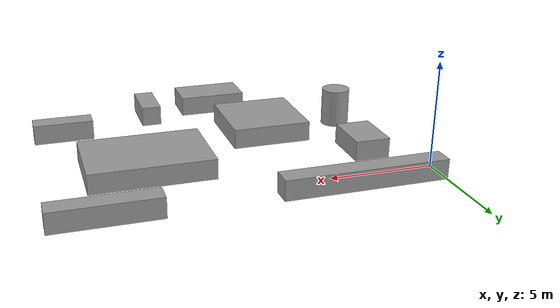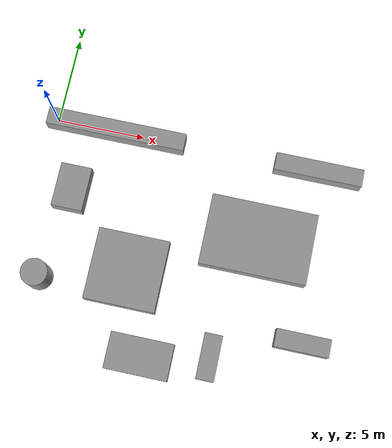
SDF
<?xml version='1.0'?>
<sdf version='1.7'>
  <model name='lab_world'>
    <link name='link'>
      <inertial>
        <mass>1</mass>
        <inertia>
          <ixx>0.166667</ixx>
          <ixy>0</ixy>
          <ixz>0</ixz>
          <iyy>0.166667</iyy>
          <iyz>0</iyz>
          <izz>0.166667</izz>
        </inertia>
        <pose>0 0 0 0 -0 0</pose>
      </inertial>
      <self_collide>0</self_collide>
      <enable_wind>0</enable_wind>
      <kinematic>0</kinematic>
      <pose>3.37169 0.101448 0 0 -0 0</pose>
      <gravity>1</gravity>
      <visual name='visual'>
        <geometry>
          <box>
            <size>8 1 1</size>
          </box>
        </geometry>
        <material>
          <script>
            <name>Gazebo/Grey</name>
            <uri>file://media/materials/scripts/gazebo.material</uri>
          </script>
          <shader type='pixel'>
            <normal_map>__default__</normal_map>
          </shader>
          <ambient>0.3 0.3 0.3 1</ambient>
          <diffuse>0.7 0.7 0.7 1</diffuse>
          <specular>0.01 0.01 0.01 1</specular>
          <emissive>0 0 0 1</emissive>
        </material>
        <pose>0 0 0 0 -0 0</pose>
        <transparency>0</transparency>
        <cast_shadows>1</cast_shadows>
      </visual>
      <collision name='collision'>
        <laser_retro>0</laser_retro>
        <max_contacts>10</max_contacts>
        <pose>0 0 0 0 -0 0</pose>
        <geometry>
          <box>
            <size>1 1 1</size>
          </box>
        </geometry>
        <surface>
          <friction>
            <ode>
              <mu>1</mu>
              <mu2>1</mu2>
              <fdir1>0 0 0</fdir1>
              <slip1>0</slip1>
              <slip2>0</slip2>
            </ode>
            <torsional>
              <coefficient>1</coefficient>
              <patch_radius>0</patch_radius>
              <surface_radius>0</surface_radius>
              <use_patch_radius>1</use_patch_radius>
              <ode>
                <slip>0</slip>
              </ode>
            </torsional>
          </friction>
          <bounce>
            <restitution_coefficient>0</restitution_coefficient>
            <threshold>1e+06</threshold>
          </bounce>
          <contact>
            <collide_without_contact>0</collide_without_contact>
            <collide_without_contact_bitmask>1</collide_without_contact_bitmask>
            <collide_bitmask>1</collide_bitmask>
            <ode>
              <soft_cfm>0</soft_cfm>
              <soft_erp>0.2</soft_erp>
              <kp>1e+13</kp>
              <kd>1</kd>
              <max_vel>0.01</max_vel>
              <min_depth>0</min_depth>
            </ode>
            <bullet>
              <split_impulse>1</split_impulse>
              <split_impulse_penetration_threshold>-0.01</split_impulse_penetration_threshold>
              <soft_cfm>0</soft_cfm>
              <soft_erp>0.2</soft_erp>
              <kp>1e+13</kp>
              <kd>1</kd>
            </bullet>
          </contact>
        </surface>
      </collision>
    </link>
    <link name='link_0'>
      <inertial>
        <mass>1</mass>
        <inertia>
          <ixx>0.166667</ixx>
          <ixy>0</ixy>
          <ixz>0</ixz>
          <iyy>0.166667</iyy>
          <iyz>0</iyz>
          <izz>0.166667</izz>
        </inertia>
        <pose>0 0 0 0 -0 0</pose>
      </inertial>
      <pose>7.48521 -12.0445 0 0 -0 0</pose>
      <gravity>1</gravity>
      <self_collide>0</self_collide>
      <kinematic>0</kinematic>
      <enable_wind>0</enable_wind>
      <visual name='visual'>
        <pose>0 0 0 0 -0 0</pose>
        <geometry>
          <box>
            <size>3.5 2 1</size>
          </box>
        </geometry>
        <material>
          <lighting>1</lighting>
          <script>
            <uri>file://media/materials/scripts/gazebo.material</uri>
            <name>Gazebo/Grey</name>
          </script>
          <shader type='pixel'>
            <normal_map>__default__</normal_map>
          </shader>
          <ambient>0.3 0.3 0.3 1</ambient>
          <diffuse>0.7 0.7 0.7 1</diffuse>
          <specular>0.01 0.01 0.01 1</specular>
          <emissive>0 0 0 1</emissive>
        </material>
        <transparency>0</transparency>
        <cast_shadows>1</cast_shadows>
      </visual>
      <collision name='collision'>
        <laser_retro>0</laser_retro>
        <max_contacts>10</max_contacts>
        <pose>0 0 0 0 -0 0</pose>
        <geometry>
          <box>
            <size>1 1 1</size>
          </box>
        </geometry>
        <surface>
          <friction>
            <ode>
              <mu>1</mu>
              <mu2>1</mu2>
              <fdir1>0 0 0</fdir1>
              <slip1>0</slip1>
              <slip2>0</slip2>
            </ode>
            <torsional>
              <coefficient>1</coefficient>
              <patch_radius>0</patch_radius>
              <surface_radius>0</surface_radius>
              <use_patch_radius>1</use_patch_radius>
              <ode>
                <slip>0</slip>
              </ode>
            </torsional>
          </friction>
          <bounce>
            <restitution_coefficient>0</restitution_coefficient>
            <threshold>1e+06</threshold>
          </bounce>
          <contact>
            <collide_without_contact>0</collide_without_contact>
            <collide_without_contact_bitmask>1</collide_without_contact_bitmask>
            <collide_bitmask>1</collide_bitmask>
            <ode>
              <soft_cfm>0</soft_cfm>
              <soft_erp>0.2</soft_erp>
              <kp>1e+13</kp>
              <kd>1</kd>
              <max_vel>0.01</max_vel>
              <min_depth>0</min_depth>
            </ode>
            <bullet>
              <split_impulse>1</split_impulse>
              <split_impulse_penetration_threshold>-0.01</split_impulse_penetration_threshold>
              <soft_cfm>0</soft_cfm>
              <soft_erp>0.2</soft_erp>
              <kp>1e+13</kp>
              <kd>1</kd>
            </bullet>
          </contact>
        </surface>
      </collision>
    </link>
    <link name='link_1'>
      <inertial>
        <mass>1</mass>
        <inertia>
          <ixx>0.166667</ixx>
          <ixy>0</ixy>
          <ixz>0</ixz>
          <iyy>0.166667</iyy>
          <iyz>0</iyz>
          <izz>0.166667</izz>
        </inertia>
        <pose>0 0 0 0 -0 0</pose>
      </inertial>
      <pose>5.78992 -7.64433 0 0 -0 0</pose>
      <gravity>1</gravity>
      <self_collide>0</self_collide>
      <kinematic>0</kinematic>
      <enable_wind>0</enable_wind>
      <visual name='visual'>
        <pose>0 0 0 0 -0 0</pose>
        <geometry>
          <box>
            <size>4 4 1</size>
          </box>
        </geometry>
        <material>
          <lighting>1</lighting>
          <script>
            <uri>file://media/materials/scripts/gazebo.material</uri>
            <name>Gazebo/Grey</name>
          </script>
          <shader type='pixel'>
            <normal_map>__default__</normal_map>
          </shader>
          <ambient>0.3 0.3 0.3 1</ambient>
          <diffuse>0.7 0.7 0.7 1</diffuse>
          <specular>0.01 0.01 0.01 1</specular>
          <emissive>0 0 0 1</emissive>
        </material>
        <transparency>0</transparency>
        <cast_shadows>1</cast_shadows>
      </visual>
      <collision name='collision'>
        <laser_retro>0</laser_retro>
        <max_contacts>10</max_contacts>
        <pose>0 0 0 0 -0 0</pose>
        <geometry>
          <box>
            <size>1 1 1</size>
          </box>
        </geometry>
        <surface>
          <friction>
            <ode>
              <mu>1</mu>
              <mu2>1</mu2>
              <fdir1>0 0 0</fdir1>
              <slip1>0</slip1>
              <slip2>0</slip2>
            </ode>
            <torsional>
              <coefficient>1</coefficient>
              <patch_radius>0</patch_radius>
              <surface_radius>0</surface_radius>
              <use_patch_radius>1</use_patch_radius>
              <ode>
                <slip>0</slip>
              </ode>
            </torsional>
          </friction>
          <bounce>
            <restitution_coefficient>0</restitution_coefficient>
            <threshold>1e+06</threshold>
          </bounce>
          <contact>
            <collide_without_contact>0</collide_without_contact>
            <collide_without_contact_bitmask>1</collide_without_contact_bitmask>
            <collide_bitmask>1</collide_bitmask>
            <ode>
              <soft_cfm>0</soft_cfm>
              <soft_erp>0.2</soft_erp>
              <kp>1e+13</kp>
              <kd>1</kd>
              <max_vel>0.01</max_vel>
              <min_depth>0</min_depth>
            </ode>
            <bullet>
              <split_impulse>1</split_impulse>
              <split_impulse_penetration_threshold>-0.01</split_impulse_penetration_threshold>
              <soft_cfm>0</soft_cfm>
              <soft_erp>0.2</soft_erp>
              <kp>1e+13</kp>
              <kd>1</kd>
            </bullet>
          </contact>
        </surface>
      </collision>
    </link>
    <link name='link_10'>
      <inertial>
        <mass>1</mass>
        <inertia>
          <ixx>0.166667</ixx>
          <ixy>0</ixy>
          <ixz>0</ixz>
          <iyy>0.166667</iyy>
          <iyz>0</iyz>
          <izz>0.166667</izz>
        </inertia>
        <pose>0 0 0 0 -0 0</pose>
      </inertial>
      <pose>11.1797 -11.3057 0.022995 0 -0 0</pose>
      <gravity>1</gravity>
      <self_collide>0</self_collide>
      <kinematic>0</kinematic>
      <enable_wind>0</enable_wind>
      <visual name='visual'>
        <pose>0 0 0 0 -0 0</pose>
        <geometry>
          <box>
            <size>1 2.5 1</size>
          </box>
        </geometry>
        <material>
          <lighting>1</lighting>
          <script>
            <uri>file://media/materials/scripts/gazebo.material</uri>
            <name>Gazebo/Grey</name>
          </script>
          <shader type='pixel'>
            <normal_map>__default__</normal_map>
          </shader>
          <ambient>0.3 0.3 0.3 1</ambient>
          <diffuse>0.7 0.7 0.7 1</diffuse>
          <specular>0.01 0.01 0.01 1</specular>
          <emissive>0 0 0 1</emissive>
        </material>
        <transparency>0</transparency>
        <cast_shadows>1</cast_shadows>
      </visual>
      <collision name='collision'>
        <laser_retro>0</laser_retro>
        <max_contacts>10</max_contacts>
        <pose>0 0 0 0 -0 0</pose>
        <geometry>
          <box>
            <size>1 1 1</size>
          </box>
        </geometry>
        <surface>
          <friction>
            <ode>
              <mu>1</mu>
              <mu2>1</mu2>
              <fdir1>0 0 0</fdir1>
              <slip1>0</slip1>
              <slip2>0</slip2>
            </ode>
            <torsional>
              <coefficient>1</coefficient>
              <patch_radius>0</patch_radius>
              <surface_radius>0</surface_radius>
              <use_patch_radius>1</use_patch_radius>
              <ode>
                <slip>0</slip>
              </ode>
            </torsional>
          </friction>
          <bounce>
            <restitution_coefficient>0</restitution_coefficient>
            <threshold>1e+06</threshold>
          </bounce>
          <contact>
            <collide_without_contact>0</collide_without_contact>
            <collide_without_contact_bitmask>1</collide_without_contact_bitmask>
            <collide_bitmask>1</collide_bitmask>
            <ode>
              <soft_cfm>0</soft_cfm>
              <soft_erp>0.2</soft_erp>
              <kp>1e+13</kp>
              <kd>1</kd>
              <max_vel>0.01</max_vel>
              <min_depth>0</min_depth>
            </ode>
            <bullet>
              <split_impulse>1</split_impulse>
              <split_impulse_penetration_threshold>-0.01</split_impulse_penetration_threshold>
              <soft_cfm>0</soft_cfm>
              <soft_erp>0.2</soft_erp>
              <kp>1e+13</kp>
              <kd>1</kd>
            </bullet>
          </contact>
        </surface>
      </collision>
    </link>
    <link name='link_3'>
      <inertial>
        <mass>1.17268</mass>
        <inertia>
          <ixx>0.195446</ixx>
          <ixy>0</ixy>
          <ixz>0</ixz>
          <iyy>0.232109</iyy>
          <iyz>0</iyz>
          <izz>0.232109</izz>
        </inertia>
        <pose>0 0 0 0 -0 0</pose>
      </inertial>
      <pose>1.71359 -3.73052 0 0 -0 0</pose>
      <gravity>1</gravity>
      <self_collide>0</self_collide>
      <kinematic>0</kinematic>
      <enable_wind>0</enable_wind>
      <visual name='visual'>
        <pose>0 0 0 0 -0 0</pose>
        <geometry>
          <box>
            <size>1.75902 2.5 1</size>
          </box>
        </geometry>
        <material>
          <lighting>1</lighting>
          <script>
            <uri>file://media/materials/scripts/gazebo.material</uri>
            <name>Gazebo/Grey</name>
          </script>
          <shader type='pixel'>
            <normal_map>__default__</normal_map>
          </shader>
          <ambient>0.3 0.3 0.3 1</ambient>
          <diffuse>0.7 0.7 0.7 1</diffuse>
          <specular>0.01 0.01 0.01 1</specular>
          <emissive>0 0 0 1</emissive>
        </material>
        <transparency>0</transparency>
        <cast_shadows>1</cast_shadows>
      </visual>
      <collision name='collision'>
        <laser_retro>0</laser_retro>
        <max_contacts>10</max_contacts>
        <pose>0 0 0 0 -0 0</pose>
        <geometry>
          <box>
            <size>1.17268 1 1</size>
          </box>
        </geometry>
        <surface>
          <friction>
            <ode>
              <mu>1</mu>
              <mu2>1</mu2>
              <fdir1>0 0 0</fdir1>
              <slip1>0</slip1>
              <slip2>0</slip2>
            </ode>
            <torsional>
              <coefficient>1</coefficient>
              <patch_radius>0</patch_radius>
              <surface_radius>0</surface_radius>
              <use_patch_radius>1</use_patch_radius>
              <ode>
                <slip>0</slip>
              </ode>
            </torsional>
          </friction>
          <bounce>
            <restitution_coefficient>0</restitution_coefficient>
            <threshold>1e+06</threshold>
          </bounce>
          <contact>
            <collide_without_contact>0</collide_without_contact>
            <collide_without_contact_bitmask>1</collide_without_contact_bitmask>
            <collide_bitmask>1</collide_bitmask>
            <ode>
              <soft_cfm>0</soft_cfm>
              <soft_erp>0.2</soft_erp>
              <kp>1e+13</kp>
              <kd>1</kd>
              <max_vel>0.01</max_vel>
              <min_depth>0</min_depth>
            </ode>
            <bullet>
              <split_impulse>1</split_impulse>
              <split_impulse_penetration_threshold>-0.01</split_impulse_penetration_threshold>
              <soft_cfm>0</soft_cfm>
              <soft_erp>0.2</soft_erp>
              <kp>1e+13</kp>
              <kd>1</kd>
            </bullet>
          </contact>
        </surface>
      </collision>
    </link>
    <link name='link_4'>
      <inertial>
        <mass>1</mass>
        <inertia>
          <ixx>0.166667</ixx>
          <ixy>0</ixy>
          <ixz>0</ixz>
          <iyy>0.166667</iyy>
          <iyz>0</iyz>
          <izz>0.166667</izz>
        </inertia>
        <pose>0 0 0 0 -0 0</pose>
      </inertial>
      <pose>12.536 -4.46478 0 0 -0 0</pose>
      <gravity>1</gravity>
      <self_collide>0</self_collide>
      <kinematic>0</kinematic>
      <enable_wind>0</enable_wind>
      <visual name='visual'>
        <pose>0 0 0 0 -0 0</pose>
        <geometry>
          <box>
            <size>6 4 1</size>
          </box>
        </geometry>
        <material>
          <lighting>1</lighting>
          <script>
            <uri>file://media/materials/scripts/gazebo.material</uri>
            <name>Gazebo/Grey</name>
          </script>
          <shader type='pixel'>
            <normal_map>__default__</normal_map>
          </shader>
          <ambient>0.3 0.3 0.3 1</ambient>
          <diffuse>0.7 0.7 0.7 1</diffuse>
          <specular>0.01 0.01 0.01 1</specular>
          <emissive>0 0 0 1</emissive>
        </material>
        <transparency>0</transparency>
        <cast_shadows>1</cast_shadows>
      </visual>
      <collision name='collision'>
        <laser_retro>0</laser_retro>
        <max_contacts>10</max_contacts>
        <pose>0 0 0 0 -0 0</pose>
        <geometry>
          <box>
            <size>1 1 1</size>
          </box>
        </geometry>
        <surface>
          <friction>
            <ode>
              <mu>1</mu>
              <mu2>1</mu2>
              <fdir1>0 0 0</fdir1>
              <slip1>0</slip1>
              <slip2>0</slip2>
            </ode>
            <torsional>
              <coefficient>1</coefficient>
              <patch_radius>0</patch_radius>
              <surface_radius>0</surface_radius>
              <use_patch_radius>1</use_patch_radius>
              <ode>
                <slip>0</slip>
              </ode>
            </torsional>
          </friction>
          <bounce>
            <restitution_coefficient>0</restitution_coefficient>
            <threshold>1e+06</threshold>
          </bounce>
          <contact>
            <collide_without_contact>0</collide_without_contact>
            <collide_without_contact_bitmask>1</collide_without_contact_bitmask>
            <collide_bitmask>1</collide_bitmask>
            <ode>
              <soft_cfm>0</soft_cfm>
              <soft_erp>0.2</soft_erp>
              <kp>1e+13</kp>
              <kd>1</kd>
              <max_vel>0.01</max_vel>
              <min_depth>0</min_depth>
            </ode>
            <bullet>
              <split_impulse>1</split_impulse>
              <split_impulse_penetration_threshold>-0.01</split_impulse_penetration_threshold>
              <soft_cfm>0</soft_cfm>
              <soft_erp>0.2</soft_erp>
              <kp>1e+13</kp>
              <kd>1</kd>
            </bullet>
          </contact>
        </surface>
      </collision>
    </link>
    <link name='link_7'>
      <inertial>
        <mass>1</mass>
        <inertia>
          <ixx>0.166667</ixx>
          <ixy>0</ixy>
          <ixz>0</ixz>
          <iyy>0.166667</iyy>
          <iyz>0</iyz>
          <izz>0.166667</izz>
        </inertia>
        <pose>0 0 0 0 -0 0</pose>
      </inertial>
      <pose>15.0931 0.132884 0 0 -0 0</pose>
      <gravity>1</gravity>
      <self_collide>0</self_collide>
      <kinematic>0</kinematic>
      <enable_wind>0</enable_wind>
      <visual name='visual'>
        <pose>0 0 0 0 -0 0</pose>
        <geometry>
          <box>
            <size>5 1 1</size>
          </box>
        </geometry>
        <material>
          <lighting>1</lighting>
          <script>
            <uri>file://media/materials/scripts/gazebo.material</uri>
            <name>Gazebo/Grey</name>
          </script>
          <shader type='pixel'>
            <normal_map>__default__</normal_map>
          </shader>
          <ambient>0.3 0.3 0.3 1</ambient>
          <diffuse>0.7 0.7 0.7 1</diffuse>
          <specular>0.01 0.01 0.01 1</specular>
          <emissive>0 0 0 1</emissive>
        </material>
        <transparency>0</transparency>
        <cast_shadows>1</cast_shadows>
      </visual>
      <collision name='collision'>
        <laser_retro>0</laser_retro>
        <max_contacts>10</max_contacts>
        <pose>0 0 0 0 -0 0</pose>
        <geometry>
          <box>
            <size>1 1 1</size>
          </box>
        </geometry>
        <surface>
          <friction>
            <ode>
              <mu>1</mu>
              <mu2>1</mu2>
              <fdir1>0 0 0</fdir1>
              <slip1>0</slip1>
              <slip2>0</slip2>
            </ode>
            <torsional>
              <coefficient>1</coefficient>
              <patch_radius>0</patch_radius>
              <surface_radius>0</surface_radius>
              <use_patch_radius>1</use_patch_radius>
              <ode>
                <slip>0</slip>
              </ode>
            </torsional>
          </friction>
          <bounce>
            <restitution_coefficient>0</restitution_coefficient>
            <threshold>1e+06</threshold>
          </bounce>
          <contact>
            <collide_without_contact>0</collide_without_contact>
            <collide_without_contact_bitmask>1</collide_without_contact_bitmask>
            <collide_bitmask>1</collide_bitmask>
            <ode>
              <soft_cfm>0</soft_cfm>
              <soft_erp>0.2</soft_erp>
              <kp>1e+13</kp>
              <kd>1</kd>
              <max_vel>0.01</max_vel>
              <min_depth>0</min_depth>
            </ode>
            <bullet>
              <split_impulse>1</split_impulse>
              <split_impulse_penetration_threshold>-0.01</split_impulse_penetration_threshold>
              <soft_cfm>0</soft_cfm>
              <soft_erp>0.2</soft_erp>
              <kp>1e+13</kp>
              <kd>1</kd>
            </bullet>
          </contact>
        </surface>
      </collision>
    </link>
    <link name='link_8'>
      <inertial>
        <mass>1</mass>
        <inertia>
          <ixx>0.145833</ixx>
          <ixy>0</ixy>
          <ixz>0</ixz>
          <iyy>0.145833</iyy>
          <iyz>0</iyz>
          <izz>0.125</izz>
        </inertia>
        <pose>0 0 0 0 -0 0</pose>
      </inertial>
      <pose>0.966522 -8.87218 0 0 -0 0</pose>
      <gravity>1</gravity>
      <self_collide>0</self_collide>
      <kinematic>0</kinematic>
      <enable_wind>0</enable_wind>
      <visual name='visual'>
        <pose>0 0 0 0 -0 0</pose>
        <geometry>
          <cylinder>
            <radius>0.75</radius>
            <length>2</length>
          </cylinder>
        </geometry>
        <material>
          <lighting>1</lighting>
          <script>
            <uri>file://media/materials/scripts/gazebo.material</uri>
            <name>Gazebo/Grey</name>
          </script>
          <shader type='pixel'>
            <normal_map>__default__</normal_map>
          </shader>
          <ambient>0.3 0.3 0.3 1</ambient>
          <diffuse>0.7 0.7 0.7 1</diffuse>
          <specular>0.01 0.01 0.01 1</specular>
          <emissive>0 0 0 1</emissive>
        </material>
        <transparency>0</transparency>
        <cast_shadows>1</cast_shadows>
      </visual>
      <collision name='collision'>
        <laser_retro>0</laser_retro>
        <max_contacts>10</max_contacts>
        <pose>0 0 0 0 -0 0</pose>
        <geometry>
          <cylinder>
            <radius>0.5</radius>
            <length>1</length>
          </cylinder>
        </geometry>
        <surface>
          <friction>
            <ode>
              <mu>1</mu>
              <mu2>1</mu2>
              <fdir1>0 0 0</fdir1>
              <slip1>0</slip1>
              <slip2>0</slip2>
            </ode>
            <torsional>
              <coefficient>1</coefficient>
              <patch_radius>0</patch_radius>
              <surface_radius>0</surface_radius>
              <use_patch_radius>1</use_patch_radius>
              <ode>
                <slip>0</slip>
              </ode>
            </torsional>
          </friction>
          <bounce>
            <restitution_coefficient>0</restitution_coefficient>
            <threshold>1e+06</threshold>
          </bounce>
          <contact>
            <collide_without_contact>0</collide_without_contact>
            <collide_without_contact_bitmask>1</collide_without_contact_bitmask>
            <collide_bitmask>1</collide_bitmask>
            <ode>
              <soft_cfm>0</soft_cfm>
              <soft_erp>0.2</soft_erp>
              <kp>1e+13</kp>
              <kd>1</kd>
              <max_vel>0.01</max_vel>
              <min_depth>0</min_depth>
            </ode>
            <bullet>
              <split_impulse>1</split_impulse>
              <split_impulse_penetration_threshold>-0.01</split_impulse_penetration_threshold>
              <soft_cfm>0</soft_cfm>
              <soft_erp>0.2</soft_erp>
              <kp>1e+13</kp>
              <kd>1</kd>
            </bullet>
          </contact>
        </surface>
      </collision>
    </link>
    <link name='link_9'>
      <inertial>
        <mass>1</mass>
        <inertia>
          <ixx>0.166667</ixx>
          <ixy>0</ixy>
          <ixz>0</ixz>
          <iyy>0.166667</iyy>
          <iyz>0</iyz>
          <izz>0.166667</izz>
        </inertia>
        <pose>0 0 0 0 -0 0</pose>
      </inertial>
      <pose>15.928 -9.52893 0 0 -0 0</pose>
      <gravity>1</gravity>
      <self_collide>0</self_collide>
      <kinematic>0</kinematic>
      <enable_wind>0</enable_wind>
      <visual name='visual'>
        <pose>0 0 0 0 -0 0</pose>
        <geometry>
          <box>
            <size>3 1 1</size>
          </box>
        </geometry>
        <material>
          <lighting>1</lighting>
          <script>
            <uri>file://media/materials/scripts/gazebo.material</uri>
            <name>Gazebo/Grey</name>
          </script>
          <shader type='pixel'>
            <normal_map>__default__</normal_map>
          </shader>
          <ambient>0.3 0.3 0.3 1</ambient>
          <diffuse>0.7 0.7 0.7 1</diffuse>
          <specular>0.01 0.01 0.01 1</specular>
          <emissive>0 0 0 1</emissive>
        </material>
        <transparency>0</transparency>
        <cast_shadows>1</cast_shadows>
      </visual>
      <collision name='collision'>
        <laser_retro>0</laser_retro>
        <max_contacts>10</max_contacts>
        <pose>0 0 0 0 -0 0</pose>
        <geometry>
          <box>
            <size>1 1 1</size>
          </box>
        </geometry>
        <surface>
          <friction>
            <ode>
              <mu>1</mu>
              <mu2>1</mu2>
              <fdir1>0 0 0</fdir1>
              <slip1>0</slip1>
              <slip2>0</slip2>
            </ode>
            <torsional>
              <coefficient>1</coefficient>
              <patch_radius>0</patch_radius>
              <surface_radius>0</surface_radius>
              <use_patch_radius>1</use_patch_radius>
              <ode>
                <slip>0</slip>
              </ode>
            </torsional>
          </friction>
          <bounce>
            <restitution_coefficient>0</restitution_coefficient>
            <threshold>1e+06</threshold>
          </bounce>
          <contact>
            <collide_without_contact>0</collide_without_contact>
            <collide_without_contact_bitmask>1</collide_without_contact_bitmask>
            <collide_bitmask>1</collide_bitmask>
            <ode>
              <soft_cfm>0</soft_cfm>
              <soft_erp>0.2</soft_erp>
              <kp>1e+13</kp>
              <kd>1</kd>
              <max_vel>0.01</max_vel>
              <min_depth>0</min_depth>
            </ode>
            <bullet>
              <split_impulse>1</split_impulse>
              <split_impulse_penetration_threshold>-0.01</split_impulse_penetration_threshold>
              <soft_cfm>0</soft_cfm>
              <soft_erp>0.2</soft_erp>
              <kp>1e+13</kp>
              <kd>1</kd>
            </bullet>
          </contact>
        </surface>
      </collision>
    </link>
    <static>0</static>
    <allow_auto_disable>1</allow_auto_disable>
  </model>
</sdf>
